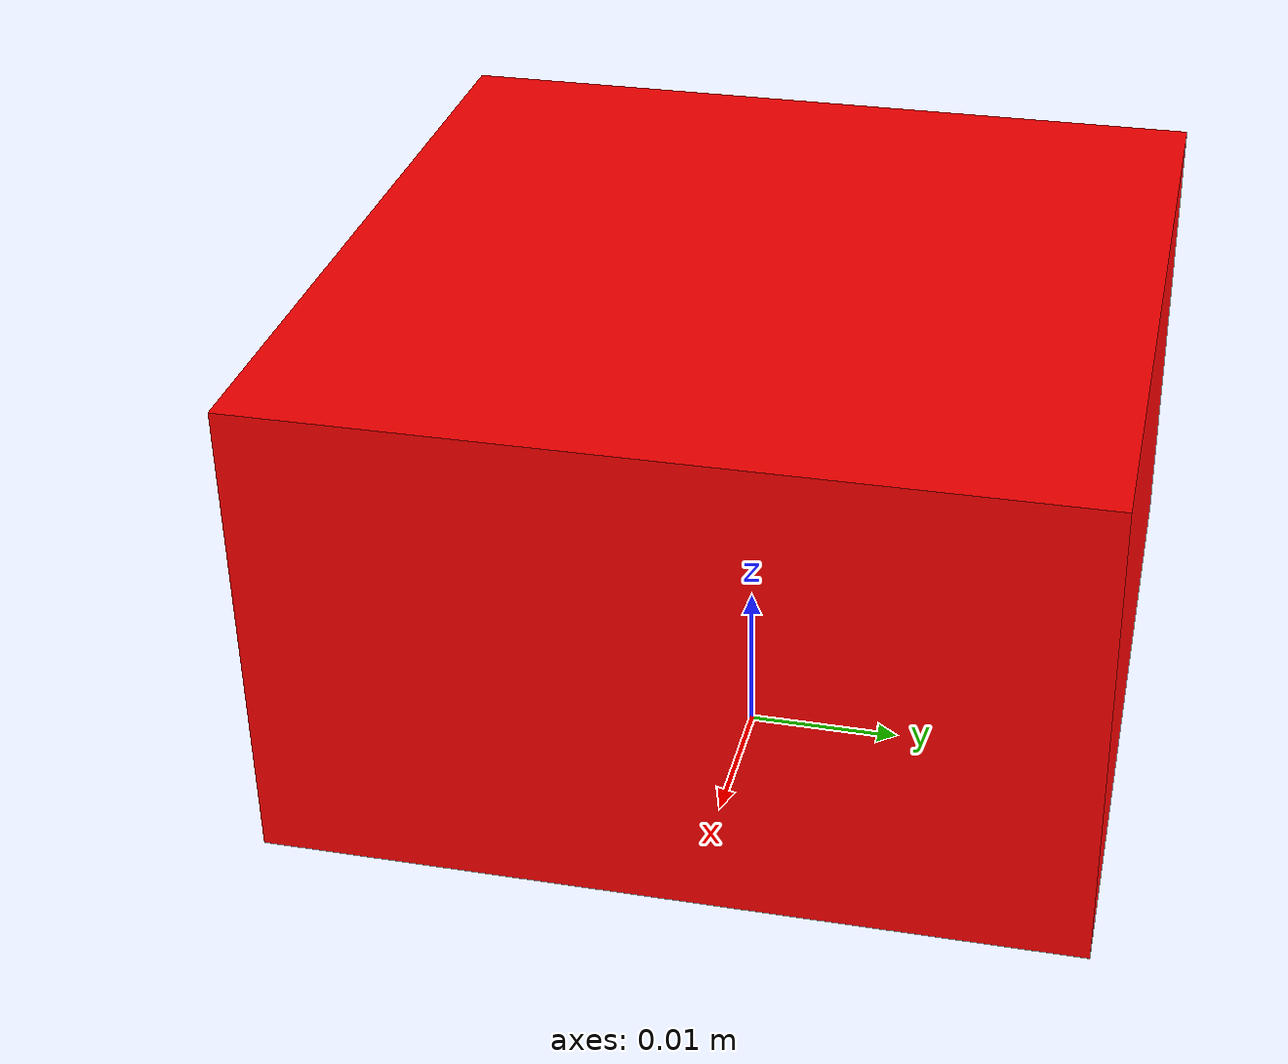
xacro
<robot name="simple_camara">

     <link name="world"/>

     <joint name="fijada_camara" type="fixed">
          <parent link="world"/>
          <child link="camara"/>
     </joint>

     <link name="camara">
        <inertial>
          <origin xyz="0 0 0" />
          <mass value="0.001" />
          <inertia  ixx="0.000001" ixy="0.0"  ixz="0.0"  iyy="0.000001"  iyz="0.0"  izz="0.000001" />
        </inertial>
        <visual>
          <origin xyz="0 0 0.02"/>
         <geometry>
           <box size="0.05 0.05 0.03" />
         </geometry>
         <material name="Red">
          <color rgba="1.0 0.0 0.0 0.95"/>
        </material>
       </visual>
       <collision>
         <origin xyz="0.0 0.0 0.0"/>
         <geometry>
           <box size="0.03 0.03 0.05" />
         </geometry>
       </collision>
     </link>
     <gazebo reference="camara">
        <material>Gazebo/Red</material>
    </gazebo>
    <!-- END - Robot description -->
     <gazebo>
          <plugin name="gazebo_ros_control" filename="libgazebo_ros_control.so">
          </plugin>
          <robotNamespace>Phantom_camara</robotNamespace>
          <robotSimType>gazebo_ros_control/DefaultRobotHWSim</robotSimType>
          <legacyModeNS>false</legacyModeNS>
     </gazebo>
     <gazebo reference="camara">
     <sensor type="camera" name="camara_sensor">
     <pose frame=''>0 0 0.0 0 +1.5707 +1.5707</pose>
          <camera>
               <horizontal_fov>1.047</horizontal_fov>
               <image>
               <width>1200</width>
               <height>900</height>
               </image>
               <clip>
               <near>0.1</near>
               <far>100</far>
               </clip>
          </camera>
               <always_on>1</always_on>
               <update_rate>300</update_rate>
               <visualize>false</visualize>
          <plugin name="camera_controller" filename="libgazebo_ros_camera.so">
                    <alwaysOn>true</alwaysOn>
                    <updateRate>0.0</updateRate>
                    <cameraName>camera</cameraName>
                    <imageTopicName>image_data</imageTopicName>
                    <cameraInfoTopicName>camera_info</cameraInfoTopicName>
                    <frameName>camera</frameName>
                    <hackBaseline>0.07</hackBaseline>
                    <distortionK1>0.0</distortionK1>
                    <distortionK2>0.0</distortionK2>
                    <distortionK3>0.0</distortionK3>
                    <distortionT1>0.0</distortionT1>
                    <distortionT2>0.0</distortionT2>
          </plugin>
     </sensor>
     </gazebo>
</robot>
